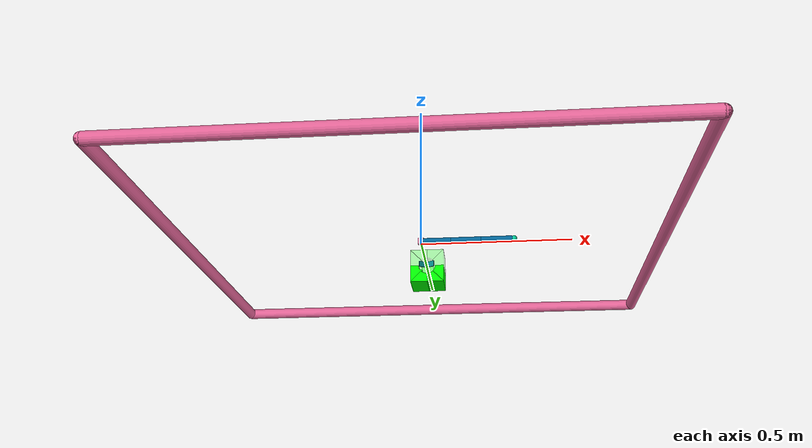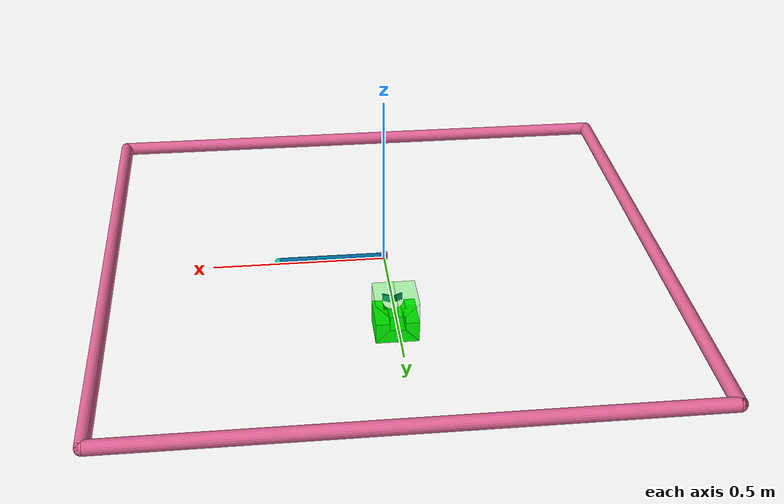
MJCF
<mujoco model="Robot">
	<compiler angle="radian" inertiafromgeom="true"
	              texturedir="textures/"
              meshdir="mesh/visual/"/>
	<default>
		<joint armature="1" damping="1" limited="true"/>
		<geom contype="0" friction="1 0.1 0.1" rgba="0.7 0.7 0 1"/>
	</default>
	<option gravity="0 0 0" integrator="RK4" timestep="0.01"/>

	    <asset>
		<mesh file="Part1.stl" name="bread_mesh1" scale="0.012 0.012 0.012"  />
		<mesh file="Part2.stl" name="bread_mesh2" scale="0.012 0.012 0.012"  />
		<mesh file="Part3.stl" name="bread_mesh3" scale="0.012 0.012 0.012"  />
		<mesh file="Part4.stl" name="bread_mesh4" scale="0.012 0.012 0.012"  />
		<mesh file="Part5.stl" name="bread_mesh5" scale="0.012 0.012 0.012"  />
		<mesh file="Part6.stl" name="bread_mesh6" scale="0.012 0.012 0.012"  />
		<mesh file="Part7.stl" name="bread_mesh7" scale="0.012 0.012 0.012"  />
		<mesh file="Part8.stl" name="bread_mesh8" scale="0.012 0.012 0.012"  />
		<mesh file="Part9.stl" name="bread_mesh9" scale="0.012 0.012 0.012"  />

		<!--Textures-->
		<texture type="skybox" builtin="gradient" rgb1="1 1 1" rgb2=".6 .8 1"  width="256" height="256"/>
	</asset>

	<worldbody>
		<!-- Arena -->
		<geom conaffinity="0" fromto="-.8 -.8 .01 .8 -.8 .01" name="sideS" rgba="0.9 0.4 0.6 1" size=".02" type="capsule"/>
		<geom conaffinity="0" fromto=" .8 -.8 .01 .8  .8 .01" name="sideE" rgba="0.9 0.4 0.6 1" size=".02" type="capsule"/>
		<geom conaffinity="0" fromto="-.8  .8 .01 .8  .8 .01" name="sideN" rgba="0.9 0.4 0.6 1" size=".02" type="capsule"/>
		<geom conaffinity="0" fromto="-.8 -.8 .01 -.8 .8 .01" name="sideW" rgba="0.9 0.4 0.6 1" size=".02" type="capsule"/>
		<!-- Arm -->
		<geom conaffinity="0" contype="0" fromto="0 0 0 0 0 0.02" name="root" rgba="0.9 0.4 0.6 1" size=".011" type="cylinder"/>
		<body name="body0" pos="0 0 .01">
			<geom conaffinity="1" contype="1" fromto="0 0 0 0.1 0 0" name="link0" rgba="0.0 0.4 0.6 1" size=".01" type="capsule"/>
			<joint axis="0 0 1" limited="false" name="joint0" pos="0 0 0" type="hinge"/>
			<body name="body1" pos="0.1 0 0">
				<joint axis="0 0 1" limited="true" name="joint1" pos="0 0 0" range="-3.0 3.0" type="hinge"/>
				<geom conaffinity="1" contype="1" fromto="0 0 0 0.1 0 0" name="link1" rgba="0.0 0.4 0.6 1" size=".01" type="capsule"/>
				<body name="body2" pos="0.1 0 0">
					<joint axis="0 0 1" limited="true" name="joint2" pos="0 0 0" range="-3.0 3.0" type="hinge"/>
					<geom conaffinity="1" contype="1" fromto="0 0 0 0.1 0 0" name="link2" rgba="0.0 0.4 0.6 1" size=".01" type="capsule"/>
					<body name="fingertip" pos="0.11 0 0">
						<geom conaffinity="1" contype="1" name="fingertip" pos="0 0 0" rgba="0.0 0.8 0.6 1" size=".01" type="sphere"/>
						<site name="fingertip" size="0.001" pos="0 0 0" rgba="0.0 0.8 0.6 1"/>

					</body>
				</body>
			</body>
		</body>
		<!-- Target -->

		<body name="target" pos="0 0.0 0.01">
			<joint armature="0" axis="1 0 0" damping="0" limited="true" name="target_x" pos="0 0 0" range="-.33 .33" ref="0" stiffness="0" type="slide"/>
			<joint armature="0" axis="0 1 0" damping="0" limited="true" name="target_y" pos="0 0 0" range="-.33 .33" ref="0" stiffness="0" type="slide"/>
			<geom conaffinity="0" contype="0" name="target" pos="0 0 0" rgba="0.9 0.2 0.2 1" size=".005" type="sphere"/>
		</body>

		<body name="bread_mesh">
		<geom conaffinity="1" contype="1" pos="0.0 0.36 0.07" friction="1 0.05 0.001" mesh="bread_mesh1" type="mesh" rgba="0 1 0 0.3" group="1" mass="0.0001" zaxis="0 0 -1"/>
		<geom conaffinity="1" contype="1" pos="-0.06 0.36 0.07" friction="1 0.05 0.001" mesh="bread_mesh2" type="mesh" rgba="0 1 0 0.3" group="1" mass="0.0001" zaxis="0 0 -1"/>
		<geom conaffinity="1" contype="1" pos="0.021 0.36 0.07" friction="1 0.05 0.001" mesh="bread_mesh3" type="mesh" rgba="0 1 0 0.3" group="1" mass="0.0001" zaxis="0 0 -1"/>
		<geom conaffinity="1" contype="1" pos="-0.06 0.36 0.07" friction="1 0.05 0.001" mesh="bread_mesh4" type="mesh" rgba="0 1 0 0.3" group="1" mass="0.0001" zaxis="0 0 -1"/>
		<geom conaffinity="1" contype="1" pos="0.0 0.36 -0.011" friction="1 0.05 0.001" mesh="bread_mesh5" type="mesh" rgba="0 1 0 1" group="1" mass="0.0001" zaxis="0 0 -1"/>
		<geom conaffinity="1" contype="1" pos="-0.06 0.36 -0.011" friction="1 0.05 0.001" mesh="bread_mesh6" type="mesh" rgba="0 1 0 1" group="1" mass="0.0001" zaxis="0 0 -1"/>
		<geom conaffinity="1" contype="1" pos="0.021 0.36 0.01" friction="1 0.05 0.001" mesh="bread_mesh7" type="mesh" rgba="0 1 0 1" group="1" mass="0.0001" zaxis="0 0 -1"/>
		<geom conaffinity="1" contype="1" pos="-0.06 0.36 0.01" friction="1 0.05 0.001" mesh="bread_mesh8" type="mesh" rgba="0 1 0 1" group="1" mass="0.0001" zaxis="0 0 -1"/>
		<geom conaffinity="1" contype="1" pos="-0.0215 0.36 0.0315" friction="1 0.05 0.001" mesh="bread_mesh9" type="mesh" rgba="0 1 0 0.5" group="1" mass="0.0001" zaxis="0 0 -1"/>
		</body>

		<body name="spr1">
			<geom conaffinity="1" contype="1" name='spr1' type="box" pos="-0.011 0.23 0.01" size="0.018 0.002 0.01" axisangle ="0 0 1 0.5235987756" friction="0.01 0.01 0.01" rgba=".0 .5 .5 1" group="1" />
			<joint name='spr1' type="slide" pos="0 0 0.01" axis="0.866 -0.5 0" limited="true" range="-0.015 -0.008" stiffness="0.005" damping="0.001"  springref  ="0.001"/>
		</body>

    	<body name="spr2">
			<geom conaffinity="1" contype="1" name='spr2' type="box" pos="0.011 0.23 0.01" size="0.018 0.002 0.01" axisangle ="0 0 -1 0.5235987756" friction="0.01 0.01 0.01" rgba=".0 .5 .5 1" group="1" />
			<joint name='spr2' type="slide" pos="0 0 0.01" axis="0.866 0.5 0" limited="true" range="0.008 0.015" stiffness="0.005" damping="0.001"  springref  ="0.001"/>
		</body>

	</worldbody>
	<actuator>
		<motor ctrllimited="true" ctrlrange="-1 1" gear="20.0" joint="joint0"/>
		<motor ctrllimited="true" ctrlrange="-1 1" gear="20.0" joint="joint1"/>
		<motor ctrllimited="true" ctrlrange="-1 1" gear="20.0" joint="joint2"/>
	</actuator>

	<sensor>
		<velocimeter name="tar_vel" site="fingertip"/>
		<accelerometer  name="tar_acc" site="fingertip"/>
		<force name="tar_touch" site="fingertip"/>
		<torque name="tar_torque" site="fingertip"/>
	</sensor>
</mujoco>
